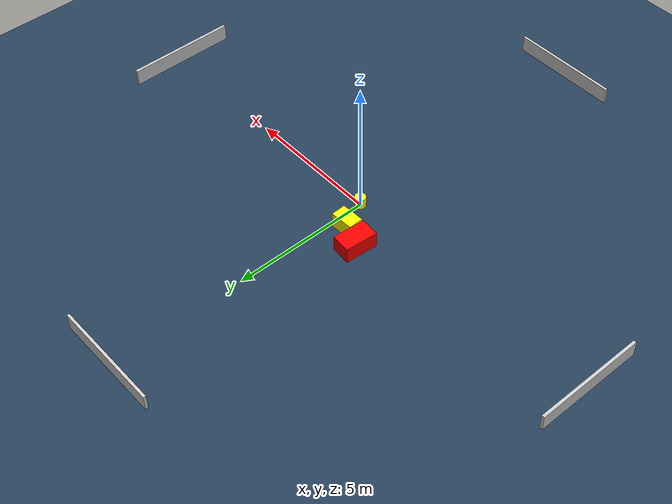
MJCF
<?xml version="1.0" ?>
<mujoco model="generated_environment">
  <option timestep="0.01" integrator="RK4" cone="elliptic"/>
  <default>
    <geom density="1"/>
  </default>
  <asset>
    <texture builtin="gradient" height="3072" name="skybox" rgb1="0.3 0.5 0.7" rgb2="0 0 0" type="skybox" width="512"/>
    <texture builtin="checker" height="300" name="groundplane" rgb1="0.2 0.3 0.4" rgb2="0.1 0.2 0.3" type="2d" width="300"/>
    <material name="groundplane" reflectance="0.2" texrepeat="5 5" texture="groundplane"/>
  </asset>
  <worldbody>
    <light dir="0 0 -1" directional="true" pos="0 0 1.5"/>
    <geom condim="3" friction="0.5 0.005 0.001" material="groundplane" name="floor" pos="0 0 0" size="0 0 0.05" type="plane"/>
    <body name="walls">
      <geom name="wall_1" condim="4" pos="-10.0 0.0 0.3" rgba="0.800000011920929 0.800000011920929 0.800000011920929 1.0" size="0.05 2.0 0.3" type="box"/>
      <geom name="wall_2" condim="4" pos="10.0 0.0 0.3" rgba="0.800000011920929 0.800000011920929 0.800000011920929 1.0" size="0.05 2.0 0.3" type="box"/>
      <geom name="wall_3" condim="4" pos="0.0 -10.0 0.3" rgba="0.800000011920929 0.800000011920929 0.800000011920929 1.0" size="2.0 0.05 0.3" type="box"/>
      <geom name="wall_4" condim="4" pos="0.0 10.0 0.3" rgba="0.800000011920929 0.800000011920929 0.800000011920929 1.0" size="2.0 0.05 0.3" type="box"/>
    </body>
    <body name="robot">
      <joint name="joint_x" type="slide" pos="0 0 0" axis="1 0 0"/>
      <joint name="joint_y" type="slide" pos="0 0 0" axis="0 1 0"/>
      <geom name="robot" type="cylinder" pos="0.0 0.0 0.2" size="0.2 0.2 0.0" mass="5.0" friction="1.0 0.005 0.0001" condim="4" rgba="1.0 1.0 0.0 1.0"/>
    </body>
    <body name="obstacle_1_movable">
      <geom name="obstacle_1_movable" condim="4" pos="-0.5285943385856491 1.0405440053206663 0.3" euler="0 0 92.26406397411417" friction="0.0 0.005 0.001" rgba="1.0 1.0 0.0 1.0" size="0.2675821873021027 0.42018935182001677 0.3" type="box" mass="0.1"/>
      <joint type="free"/>
    </body>
    <body name="obstacle_2_static">
      <geom name="obstacle_2_static" condim="4" pos="-1.312064583786209 1.3849730189247296 0.3" euler="0 0 265.3945040776218" friction="0.0 0.005 0.001" rgba="1.0 0.0 0.0 1.0" size="0.5940103447372531 0.35489380279310057 0.3" type="box"/>
    </body>
  </worldbody>
  <actuator>
    <motor name="actuator_x" joint="joint_x" gear="1" ctrlrange="-1 1"/>
    <motor name="actuator_y" joint="joint_y" gear="1" ctrlrange="-1 1"/>
  </actuator>
</mujoco>
